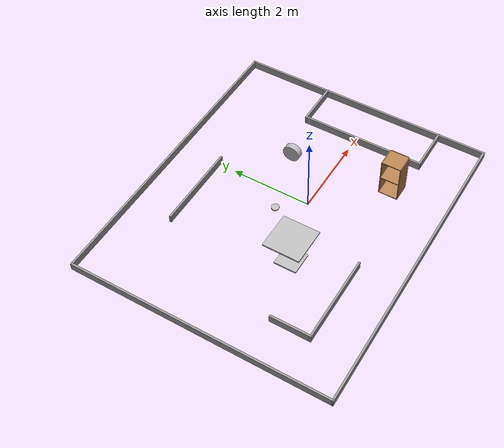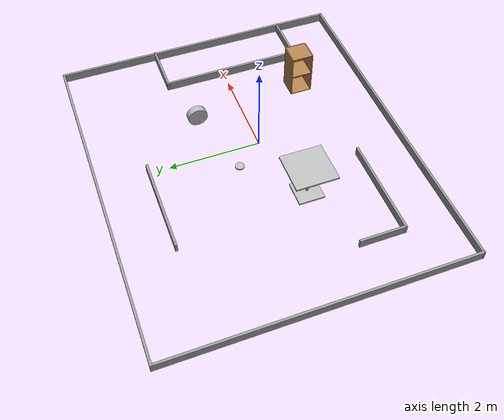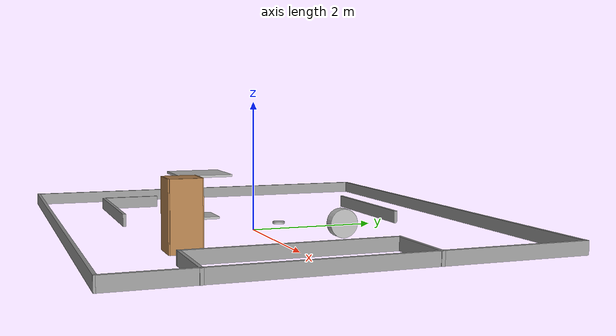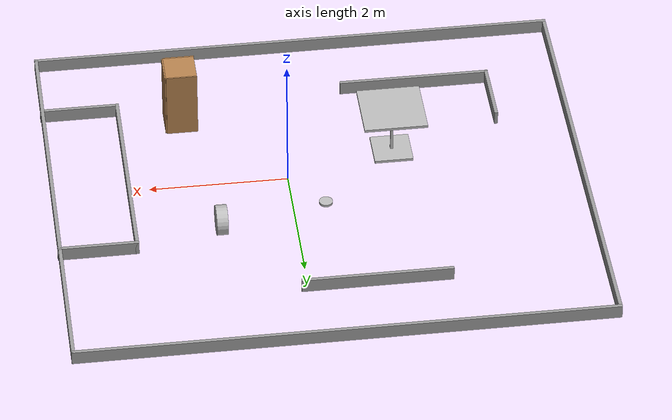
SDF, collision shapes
<?xml version='1.0'?>
<sdf version='1.6'>
  <model name='house_objects'>
    <model name='bowl'>
      <link name='link'>
        <inertial>
          <pose frame=''>0 0 0.0175 0 -0 0</pose>
          <mass>0.1</mass>
          <inertia>
            <ixx>0.000250308</ixx>
            <ixy>0</ixy>
            <ixz>0</ixz>
            <iyy>0.000250308</iyy>
            <iyz>0</iyz>
            <izz>0.0004802</izz>
          </inertia>
        </inertial>
        <collision name='collision'>
          <pose frame=''>0 0 0.0175 0 -0 0</pose>
          <geometry>
            <cylinder>
              <radius>0.098</radius>
              <length>0.035</length>
            </cylinder>
          </geometry>
        </collision>
        <visual name='visual'>
          <geometry>
            <mesh>
              <uri>model://bowl/meshes/bowl.dae</uri>
            </mesh>
          </geometry>
        </visual>
      </link>
      <pose frame=''>-0.47771 0.60298 0 0 -0 0</pose>
    </model>
    <model name='cabinet'>
      <static>1</static>
      <link name='cabinet_bottom_plate'>
        <inertial>
          <pose frame=''>0 0 -1 0 -0 0</pose>
          <inertia>
            <ixx>2.05</ixx>
            <ixy>0</ixy>
            <ixz>0</ixz>
            <iyy>2.05</iyy>
            <iyz>0</iyz>
            <izz>2.05</izz>
          </inertia>
          <mass>25</mass>
        </inertial>
        <collision name='cabinet_bottom_plate_geom'>
          <pose frame=''>0 0 0.01 0 -0 0</pose>
          <geometry>
            <box>
              <size>0.45 0.45 0.02</size>
            </box>
          </geometry>
        </collision>
        <visual name='cabinet_bottom_plate_geom_visual'>
          <pose frame=''>0 0 0.01 0 -0 0</pose>
          <geometry>
            <box>
              <size>0.45 0.45 0.02</size>
            </box>
          </geometry>
          <material>
            <script>
              <uri>file://media/materials/scripts/gazebo.material</uri>
              <name>Gazebo/Wood</name>
            </script>
          </material>
        </visual>
        <collision name='cabinet_bottom_plate_geom_cabinet_back_plate'>
          <pose frame=''>0.235 0 0.51 0 -0 0</pose>
          <geometry>
            <box>
              <size>0.02 0.45 1.02</size>
            </box>
          </geometry>
        </collision>
        <visual name='cabinet_bottom_plate_geom_cabinet_back_plate_visual'>
          <pose frame=''>0.235 0 0.51 0 -0 0</pose>
          <geometry>
            <box>
              <size>0.02 0.45 1.02</size>
            </box>
          </geometry>
          <material>
            <script>
              <uri>file://media/materials/scripts/gazebo.material</uri>
              <name>Gazebo/Wood</name>
            </script>
          </material>
        </visual>
        <collision name='cabinet_bottom_plate_geom_cabinet_left_plate'>
          <pose frame=''>0 0.235 0.51 0 -0 0</pose>
          <geometry>
            <box>
              <size>0.45 0.02 1.02</size>
            </box>
          </geometry>
        </collision>
        <visual name='cabinet_bottom_plate_geom_cabinet_left_plate_visual'>
          <pose frame=''>0 0.235 0.51 0 -0 0</pose>
          <geometry>
            <box>
              <size>0.45 0.02 1.02</size>
            </box>
          </geometry>
          <material>
            <script>
              <uri>file://media/materials/scripts/gazebo.material</uri>
              <name>Gazebo/Wood</name>
            </script>
          </material>
        </visual>
        <collision name='cabinet_bottom_plate_geom_cabinet_middle_plate'>
          <pose frame=''>0 0 0.51 0 -0 0</pose>
          <geometry>
            <box>
              <size>0.45 0.45 0.02</size>
            </box>
          </geometry>
        </collision>
        <visual name='cabinet_bottom_plate_geom_cabinet_middle_plate_visual'>
          <pose frame=''>0 0 0.51 0 -0 0</pose>
          <geometry>
            <box>
              <size>0.45 0.45 0.02</size>
            </box>
          </geometry>
          <material>
            <script>
              <uri>file://media/materials/scripts/gazebo.material</uri>
              <name>Gazebo/Wood</name>
            </script>
          </material>
        </visual>
        <collision name='cabinet_bottom_plate_geom_cabinet_right_plate'>
          <pose frame=''>0 -0.235 0.51 0 -0 0</pose>
          <geometry>
            <box>
              <size>0.45 0.02 1.02</size>
            </box>
          </geometry>
        </collision>
        <visual name='cabinet_bottom_plate_geom_cabinet_right_plate_visual'>
          <pose frame=''>0 -0.235 0.51 0 -0 0</pose>
          <geometry>
            <box>
              <size>0.45 0.02 1.02</size>
            </box>
          </geometry>
          <material>
            <script>
              <uri>file://media/materials/scripts/gazebo.material</uri>
              <name>Gazebo/Wood</name>
            </script>
          </material>
        </visual>
        <collision name='cabinet_bottom_plate_geom_cabinet_top_plate'>
          <pose frame=''>0 0 1.01 0 -0 0</pose>
          <geometry>
            <box>
              <size>0.45 0.45 0.02</size>
            </box>
          </geometry>
        </collision>
        <visual name='cabinet_bottom_plate_geom_cabinet_top_plate_visual'>
          <pose frame=''>0 0 1.01 0 -0 0</pose>
          <geometry>
            <box>
              <size>0.45 0.45 0.02</size>
            </box>
          </geometry>
          <material>
            <script>
              <uri>file://media/materials/scripts/gazebo.material</uri>
              <name>Gazebo/Wood</name>
            </script>
          </material>
        </visual>
      </link>
      <pose frame=''>1.38807 -1.47947 0 0 -0 0</pose>
    </model>
    <model name='cafe_table'>
      <static>1</static>
      <link name='link'>
        <collision name='surface'>
          <pose frame=''>0 0 0.755 0 -0 0</pose>
          <geometry>
            <box>
              <size>0.913 0.913 0.04</size>
            </box>
          </geometry>
        </collision>
        <collision name='column'>
          <pose frame=''>0 0 0.37 0 -0 0</pose>
          <geometry>
            <box>
              <size>0.042 0.042 0.74</size>
            </box>
          </geometry>
        </collision>
        <collision name='base'>
          <pose frame=''>0 0 0.02 0 -0 0</pose>
          <geometry>
            <box>
              <size>0.56 0.56 0.04</size>
            </box>
          </geometry>
        </collision>
        <visual name='visual'>
          <geometry>
            <mesh>
              <uri>model://cafe_table/meshes/cafe_table.dae</uri>
            </mesh>
          </geometry>
        </visual>
      </link>
      <pose frame=''>-1.57154 -0.460658 0 0 -0 0</pose>
    </model>
    <model name='car_wheel'>
      <link name='link'>
        <pose frame=''>0 0 0.21682 0 1.5707 0</pose>
        <inertial>
          <mass>12</mass>
          <inertia>
            <ixx>0.167005</ixx>
            <ixy>0</ixy>
            <ixz>0</ixz>
            <iyy>0.167005</iyy>
            <iyz>0</iyz>
            <izz>0.282065</izz>
          </inertia>
        </inertial>
        <collision name='collision'>
          <geometry>
            <cylinder>
              <radius>0.21682</radius>
              <length>0.16116</length>
            </cylinder>
          </geometry>
          <surface>
            <friction>
              <ode>
                <mu>1</mu>
                <mu2>1</mu2>
                <fdir1>0 0 1</fdir1>
                <slip1>0</slip1>
                <slip2>0</slip2>
              </ode>
            </friction>
            <contact>
              <ode>
                <min_depth>0.005</min_depth>
                <kp>1e+08</kp>
              </ode>
            </contact>
          </surface>
        </collision>
        <visual name='visual'>
          <pose frame=''>0 0 -0.08058 0 -0 0</pose>
          <geometry>
            <mesh>
              <uri>model://car_wheel/meshes/car_wheel.dae</uri>
            </mesh>
          </geometry>
        </visual>
      </link>
      <pose frame=''>1.06919 1.04222 0 0 -0 0</pose>
    </model>
    <model name='home_world'>
      <pose frame=''>-0.408014 0.294924 0 0 -0 0</pose>
      <link name='Wall_0'>
        <collision name='Wall_0_Collision'>
          <geometry>
            <box>
              <size>7.65 0.05 0.2</size>
            </box>
          </geometry>
          <pose frame=''>0 0 0.1 0 -0 0</pose>
        </collision>
        <visual name='Wall_0_Visual'>
          <pose frame=''>0 0 0.1 0 -0 0</pose>
          <geometry>
            <box>
              <size>7.65 0.05 0.2</size>
            </box>
          </geometry>
          <material>
            <script>
              <uri>file://media/materials/scripts/gazebo.material</uri>
              <name>Gazebo/Grey</name>
            </script>
            <ambient>1 1 1 1</ambient>
          </material>
          <meta>
            <layer>0</layer>
          </meta>
        </visual>
        <pose frame=''>-0.004979 3.2468 0 0 -0 0</pose>
      </link>
      <link name='Wall_1'>
        <collision name='Wall_1_Collision'>
          <geometry>
            <box>
              <size>6.528 0.05 0.2</size>
            </box>
          </geometry>
          <pose frame=''>0 0 0.1 0 -0 0</pose>
        </collision>
        <visual name='Wall_1_Visual'>
          <pose frame=''>0 0 0.1 0 -0 0</pose>
          <geometry>
            <box>
              <size>6.528 0.05 0.2</size>
            </box>
          </geometry>
          <material>
            <script>
              <uri>file://media/materials/scripts/gazebo.material</uri>
              <name>Gazebo/Grey</name>
            </script>
            <ambient>1 1 1 1</ambient>
          </material>
          <meta>
            <layer>0</layer>
          </meta>
        </visual>
        <pose frame=''>3.79502 0.007795 0 0 -0 -1.5708</pose>
      </link>
      <link name='Wall_13'>
        <collision name='Wall_13_Collision'>
          <geometry>
            <box>
              <size>1.15 0.05 0.2</size>
            </box>
          </geometry>
          <pose frame=''>0 0 0.1 0 -0 0</pose>
        </collision>
        <visual name='Wall_13_Visual'>
          <pose frame=''>0 0 0.1 0 -0 0</pose>
          <geometry>
            <box>
              <size>1.15 0.05 0.2</size>
            </box>
          </geometry>
          <material>
            <script>
              <uri>file://media/materials/scripts/gazebo.material</uri>
              <name>Gazebo/Grey</name>
            </script>
            <ambient>1 1 1 1</ambient>
          </material>
          <meta>
            <layer>0</layer>
          </meta>
        </visual>
        <pose frame=''>3.25502 1.05679 0 0 -0 3.14159</pose>
      </link>
      <link name='Wall_14'>
        <collision name='Wall_14_Collision'>
          <geometry>
            <box>
              <size>3.15 0.05 0.2</size>
            </box>
          </geometry>
          <pose frame=''>0 0 0.1 0 -0 0</pose>
        </collision>
        <visual name='Wall_14_Visual'>
          <pose frame=''>0 0 0.1 0 -0 0</pose>
          <geometry>
            <box>
              <size>3.15 0.05 0.2</size>
            </box>
          </geometry>
          <material>
            <script>
              <uri>file://media/materials/scripts/gazebo.material</uri>
              <name>Gazebo/Grey</name>
            </script>
            <ambient>1 1 1 1</ambient>
          </material>
          <meta>
            <layer>0</layer>
          </meta>
        </visual>
        <pose frame=''>2.70502 -0.493205 0 0 -0 -1.5708</pose>
      </link>
      <link name='Wall_15'>
        <collision name='Wall_15_Collision'>
          <geometry>
            <box>
              <size>1.15 0.05 0.2</size>
            </box>
          </geometry>
          <pose frame=''>0 0 0.1 0 -0 0</pose>
        </collision>
        <visual name='Wall_15_Visual'>
          <pose frame=''>0 0 0.1 0 -0 0</pose>
          <geometry>
            <box>
              <size>1.15 0.05 0.2</size>
            </box>
          </geometry>
          <material>
            <script>
              <uri>file://media/materials/scripts/gazebo.material</uri>
              <name>Gazebo/Grey</name>
            </script>
            <ambient>1 1 1 1</ambient>
          </material>
          <meta>
            <layer>0</layer>
          </meta>
        </visual>
        <pose frame=''>3.25502 -2.0432 0 0 -0 0</pose>
      </link>
      <link name='Wall_2'>
        <collision name='Wall_2_Collision'>
          <geometry>
            <box>
              <size>7.65 0.05 0.2</size>
            </box>
          </geometry>
          <pose frame=''>0 0 0.1 0 -0 0</pose>
        </collision>
        <visual name='Wall_2_Visual'>
          <pose frame=''>0 0 0.1 0 -0 0</pose>
          <geometry>
            <box>
              <size>7.65 0.05 0.2</size>
            </box>
          </geometry>
          <material>
            <script>
              <uri>file://media/materials/scripts/gazebo.material</uri>
              <name>Gazebo/Grey</name>
            </script>
            <ambient>1 1 1 1</ambient>
          </material>
          <meta>
            <layer>0</layer>
          </meta>
        </visual>
        <pose frame=''>-0.004979 -3.23897 0 0 -0 -3.13955</pose>
      </link>
      <link name='Wall_3'>
        <collision name='Wall_3_Collision'>
          <geometry>
            <box>
              <size>6.52833 0.05 0.2</size>
            </box>
          </geometry>
          <pose frame=''>0 0 0.1 0 -0 0</pose>
        </collision>
        <visual name='Wall_3_Visual'>
          <pose frame=''>0 0 0.1 0 -0 0</pose>
          <geometry>
            <box>
              <size>6.52833 0.05 0.2</size>
            </box>
          </geometry>
          <material>
            <script>
              <uri>file://media/materials/scripts/gazebo.material</uri>
              <name>Gazebo/Grey</name>
            </script>
            <ambient>1 1 1 1</ambient>
          </material>
          <meta>
            <layer>0</layer>
          </meta>
        </visual>
        <pose frame=''>-3.80498 0.00763 0 0 -0 1.5708</pose>
      </link>
      <link name='Wall_5'>
        <collision name='Wall_5_Collision'>
          <geometry>
            <box>
              <size>1 0.05 0.2</size>
            </box>
          </geometry>
          <pose frame=''>0 0 0.1 0 -0 0</pose>
        </collision>
        <visual name='Wall_5_Visual'>
          <pose frame=''>0 0 0.1 0 -0 0</pose>
          <geometry>
            <box>
              <size>1 0.05 0.2</size>
            </box>
          </geometry>
          <material>
            <script>
              <uri>file://media/materials/scripts/gazebo.material</uri>
              <name>Gazebo/Grey</name>
            </script>
            <ambient>1 1 1 1</ambient>
          </material>
          <meta>
            <layer>0</layer>
          </meta>
        </visual>
        <pose frame=''>-2.7606 -1.6624 0 0 -0 -1.5708</pose>
      </link>
      <link name='Wall_6'>
        <collision name='Wall_6_Collision'>
          <geometry>
            <box>
              <size>2.19649 0.05 0.2</size>
            </box>
          </geometry>
          <pose frame=''>0 0 0.1 0 -0 0</pose>
        </collision>
        <visual name='Wall_6_Visual'>
          <pose frame=''>0 0 0.1 0 -0 0</pose>
          <geometry>
            <box>
              <size>2.19649 0.05 0.2</size>
            </box>
          </geometry>
          <material>
            <script>
              <uri>file://media/materials/scripts/gazebo.material</uri>
              <name>Gazebo/Grey</name>
            </script>
            <ambient>1 1 1 1</ambient>
          </material>
          <meta>
            <layer>0</layer>
          </meta>
        </visual>
        <pose frame=''>-1.68779 -2.15261 0 0 -0 0</pose>
      </link>
      <link name='Wall_8'>
        <collision name='Wall_8_Collision'>
          <geometry>
            <box>
              <size>2.15 0.05 0.2</size>
            </box>
          </geometry>
          <pose frame=''>0 0 0.1 0 -0 0</pose>
        </collision>
        <visual name='Wall_8_Visual'>
          <pose frame=''>0 0 0.1 0 -0 0</pose>
          <geometry>
            <box>
              <size>2.15 0.05 0.2</size>
            </box>
          </geometry>
          <material>
            <script>
              <uri>file://media/materials/scripts/gazebo.material</uri>
              <name>Gazebo/Grey</name>
            </script>
            <ambient>1 1 1 1</ambient>
          </material>
          <meta>
            <layer>0</layer>
          </meta>
        </visual>
        <pose frame=''>-0.564979 2.15679 0 0 -0 0</pose>
      </link>
      <static>1</static>
    </model>
    <static>0</static>
    <allow_auto_disable>1</allow_auto_disable>
  </model>
</sdf>
